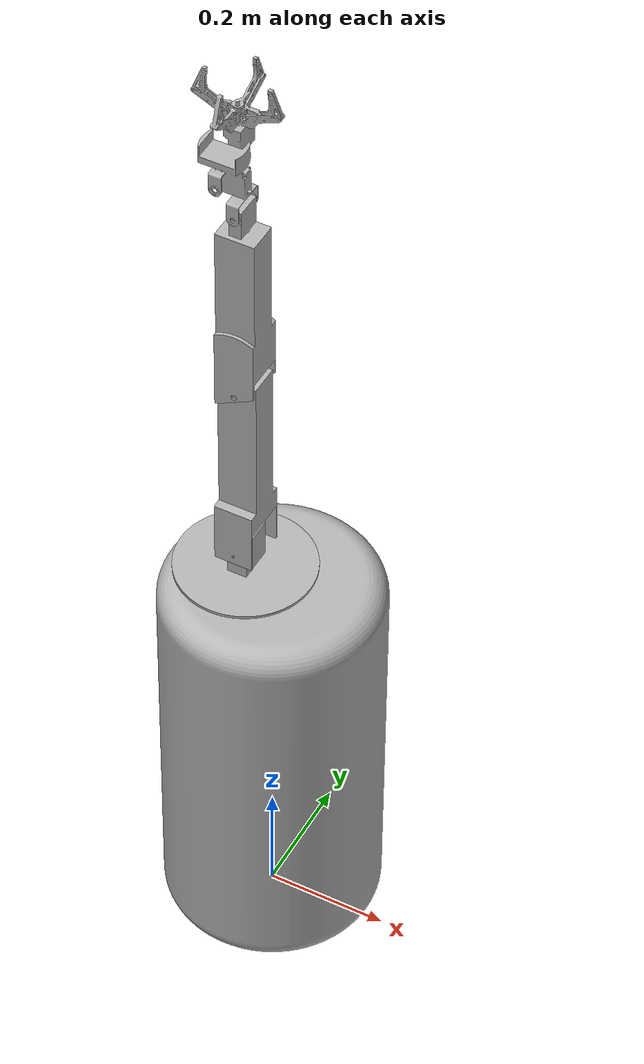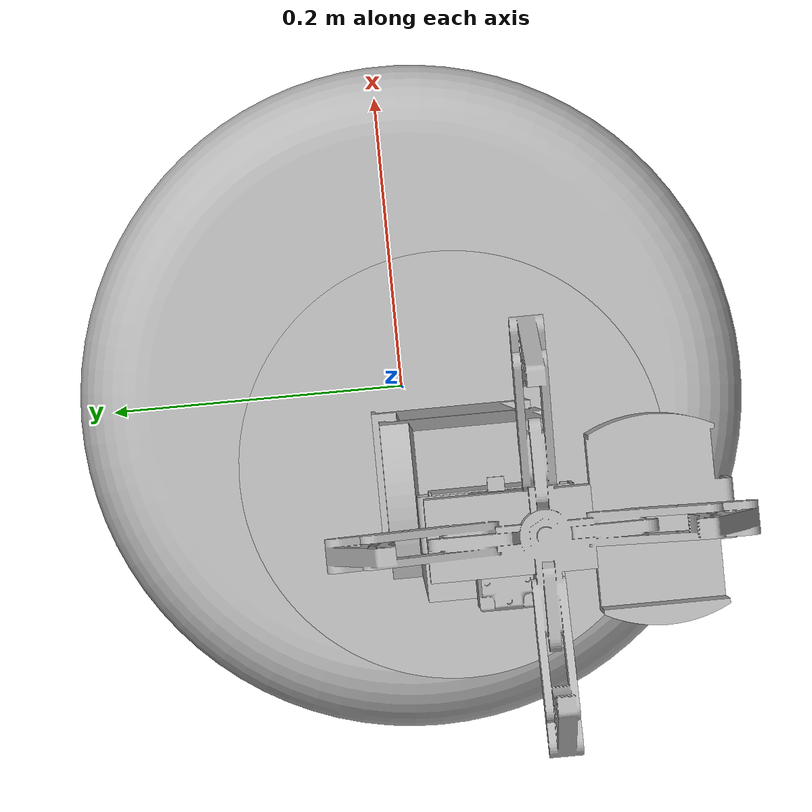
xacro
<?xml version="1.0" ?>
<robot name="roboticarm" xmlns:xacro="http://www.ros.org/wiki/xacro">

<xacro:include filename="$(find roboticarm_description)/urdf/materials.xacro" />
<xacro:include filename="$(find roboticarm_description)/urdf/roboticarm.trans" />
<xacro:include filename="$(find roboticarm_description)/urdf/roboticarm.gazebo" />
<link name="base_link">
  <inertial>
    <origin xyz="0.07170147470861574 0.0724672454182439 0.3244590303819093" rpy="0 0 0"/>
    <mass value="555.7346839951744"/>
    <inertia ixx="27.918915" iyy="27.919482" izz="8.711404" ixy="-0.000347" iyz="0.003477" ixz="0.00733"/>
  </inertial>
  <visual>
    <origin xyz="0 0 0" rpy="0 0 0"/>
    <geometry>
      <mesh filename="file://$(find roboticarm_description)/meshes/base_link.stl" scale="0.001 0.001 0.001"/>
    </geometry>
    <material name="silver"/>
  </visual>
  <collision>
    <origin xyz="0 0 0" rpy="0 0 0"/>
    <geometry>
      <mesh filename="file://$(find roboticarm_description)/meshes/base_link.stl" scale="0.001 0.001 0.001"/>
    </geometry>
  </collision>
</link>

<link name="waist_1">
  <inertial>
    <origin xyz="-4.5394164495393685e-07 0.000910466670597028 0.0159037153558238" rpy="0 0 0"/>
    <mass value="2.5376552135525894"/>
    <inertia ixx="0.006217" iyy="0.006015" izz="0.010077" ixy="0.0" iyz="-5e-05" ixz="0.0"/>
  </inertial>
  <visual>
    <origin xyz="-0.034565 -0.054849 -0.708914" rpy="0 0 0"/>
    <geometry>
      <mesh filename="file://$(find roboticarm_description)/meshes/waist_1.stl" scale="0.001 0.001 0.001"/>
    </geometry>
    <material name="silver"/>
  </visual>
  <collision>
    <origin xyz="-0.034565 -0.054849 -0.708914" rpy="0 0 0"/>
    <geometry>
      <mesh filename="file://$(find roboticarm_description)/meshes/waist_1.stl" scale="0.001 0.001 0.001"/>
    </geometry>
  </collision>
</link>

<link name="shoulder_1">
  <inertial>
    <origin xyz="-4.5394164471801446e-07 -0.035845507747538544 0.19064392313557188" rpy="0 0 0"/>
    <mass value="8.062761032384062"/>
    <inertia ixx="0.067114" iyy="0.067471" izz="0.005059" ixy="0.0" iyz="-0.0003" ixz="-0.0"/>
  </inertial>
  <visual>
    <origin xyz="-0.034565 -0.092619 -0.760831" rpy="0 0 0"/>
    <geometry>
      <mesh filename="file://$(find roboticarm_description)/meshes/shoulder_1.stl" scale="0.001 0.001 0.001"/>
    </geometry>
    <material name="silver"/>
  </visual>
  <collision>
    <origin xyz="-0.034565 -0.092619 -0.760831" rpy="0 0 0"/>
    <geometry>
      <mesh filename="file://$(find roboticarm_description)/meshes/shoulder_1.stl" scale="0.001 0.001 0.001"/>
    </geometry>
  </collision>
</link>

<link name="elbow_1">
  <inertial>
    <origin xyz="-7.27691491417895e-05 -0.03320582485557203 0.1555982788395438" rpy="0 0 0"/>
    <mass value="7.521482396242973"/>
    <inertia ixx="0.04938" iyy="0.04967" izz="0.004753" ixy="1e-06" iyz="0.000784" ixz="-8.9e-05"/>
  </inertial>
  <visual>
    <origin xyz="-0.034565 -0.088479 -1.087958" rpy="0 0 0"/>
    <geometry>
      <mesh filename="file://$(find roboticarm_description)/meshes/elbow_1.stl" scale="0.001 0.001 0.001"/>
    </geometry>
    <material name="silver"/>
  </visual>
  <collision>
    <origin xyz="-0.034565 -0.088479 -1.087958" rpy="0 0 0"/>
    <geometry>
      <mesh filename="file://$(find roboticarm_description)/meshes/elbow_1.stl" scale="0.001 0.001 0.001"/>
    </geometry>
  </collision>
</link>

<link name="w_a_1">
  <inertial>
    <origin xyz="-4.539416358084747e-07 -0.0001347854618797828 0.023017894662987537" rpy="0 0 0"/>
    <mass value="0.32955278928588533"/>
    <inertia ixx="0.000115" iyy="7.4e-05" izz="6.3e-05" ixy="0.0" iyz="1e-06" ixz="0.0"/>
  </inertial>
  <visual>
    <origin xyz="-0.034057 -0.054011 -1.390853" rpy="0 0 0"/>
    <geometry>
      <mesh filename="file://$(find roboticarm_description)/meshes/w_a_1.stl" scale="0.001 0.001 0.001"/>
    </geometry>
    <material name="silver"/>
  </visual>
  <collision>
    <origin xyz="-0.034057 -0.054011 -1.390853" rpy="0 0 0"/>
    <geometry>
      <mesh filename="file://$(find roboticarm_description)/meshes/w_a_1.stl" scale="0.001 0.001 0.001"/>
    </geometry>
  </collision>
</link>

<link name="w_b_1">
  <inertial>
    <origin xyz="-4.5394163915302155e-07 -0.023736476061548904 0.011335494498837306" rpy="0 0 0"/>
    <mass value="0.03411828668710707"/>
    <inertia ixx="2.4e-05" iyy="6e-06" izz="2e-05" ixy="0.0" iyz="0.0" ixz="-0.0"/>
  </inertial>
  <visual>
    <origin xyz="-0.034057 -0.076617 -1.427861" rpy="0 0 0"/>
    <geometry>
      <mesh filename="file://$(find roboticarm_description)/meshes/w_b_1.stl" scale="0.001 0.001 0.001"/>
    </geometry>
    <material name="silver"/>
  </visual>
  <collision>
    <origin xyz="-0.034057 -0.076617 -1.427861" rpy="0 0 0"/>
    <geometry>
      <mesh filename="file://$(find roboticarm_description)/meshes/w_b_1.stl" scale="0.001 0.001 0.001"/>
    </geometry>
  </collision>
</link>

<link name="w_c_1">
  <inertial>
    <origin xyz="-0.003951945014557701 -0.027299377766914802 0.06838515761215969" rpy="0 0 0"/>
    <mass value="0.6216016037280759"/>
    <inertia ixx="0.001485" iyy="0.001254" izz="0.000602" ixy="6.7e-05" iyz="0.000585" ixz="-0.000116"/>
  </inertial>
  <visual>
    <origin xyz="-0.034057 -0.052881 -1.454861" rpy="0 0 0"/>
    <geometry>
      <mesh filename="file://$(find roboticarm_description)/meshes/w_c_1.stl" scale="0.001 0.001 0.001"/>
    </geometry>
    <material name="silver"/>
  </visual>
  <collision>
    <origin xyz="-0.034057 -0.052881 -1.454861" rpy="0 0 0"/>
    <geometry>
      <mesh filename="file://$(find roboticarm_description)/meshes/w_c_1.stl" scale="0.001 0.001 0.001"/>
    </geometry>
  </collision>
</link>

<link name="gripper_1">
  <inertial>
    <origin xyz="-1.4549959634693743e-06 -0.004374027679356865 0.05098711189891225" rpy="0 0 0"/>
    <mass value="0.7040814534189734"/>
    <inertia ixx="0.00099" iyy="0.000924" izz="0.000643" ixy="-0.0" iyz="9.8e-05" ixz="-0.0"/>
  </inertial>
  <visual>
    <origin xyz="-0.034057 -0.052881 -1.542061" rpy="0 0 0"/>
    <geometry>
      <mesh filename="file://$(find roboticarm_description)/meshes/gripper_1.stl" scale="0.001 0.001 0.001"/>
    </geometry>
    <material name="silver"/>
  </visual>
  <collision>
    <origin xyz="-0.034057 -0.052881 -1.542061" rpy="0 0 0"/>
    <geometry>
      <mesh filename="file://$(find roboticarm_description)/meshes/gripper_1.stl" scale="0.001 0.001 0.001"/>
    </geometry>
  </collision>
</link>

<joint name="Revolute 11" type="continuous">
  <origin xyz="0.034565 0.054849 0.708914" rpy="0 0 0"/>
  <parent link="base_link"/>
  <child link="waist_1"/>
  <axis xyz="0.0 -0.0 -1.0"/>
</joint>

<joint name="Revolute 12" type="continuous">
  <origin xyz="0.0 0.03777 0.051917" rpy="0 0 0"/>
  <parent link="waist_1"/>
  <child link="shoulder_1"/>
  <axis xyz="0.0 1.0 0.0"/>
</joint>

<joint name="Revolute 13" type="continuous">
  <origin xyz="0.0 -0.00414 0.327127" rpy="0 0 0"/>
  <parent link="shoulder_1"/>
  <child link="elbow_1"/>
  <axis xyz="0.0 1.0 -0.0"/>
</joint>

<joint name="Revolute 18" type="continuous">
  <origin xyz="-0.000508 -0.034468 0.302895" rpy="0 0 0"/>
  <parent link="elbow_1"/>
  <child link="w_a_1"/>
  <axis xyz="-0.0 0.0 1.0"/>
</joint>

<joint name="Revolute 19" type="continuous">
  <origin xyz="0.0 0.022606 0.037008" rpy="0 0 0"/>
  <parent link="w_a_1"/>
  <child link="w_b_1"/>
  <axis xyz="0.0 1.0 -0.0"/>
</joint>

<joint name="Revolute 20" type="continuous">
  <origin xyz="0.0 -0.023736 0.027" rpy="0 0 0"/>
  <parent link="w_b_1"/>
  <child link="w_c_1"/>
  <axis xyz="0.0 -0.0 -1.0"/>
</joint>

<joint name="Rigid 21" type="fixed">
  <origin xyz="0.0 0.0 0.0872" rpy="0 0 0"/>
  <parent link="w_c_1"/>
  <child link="gripper_1"/>
</joint>

</robot>

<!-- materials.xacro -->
<robot name="roboticarm" xmlns:xacro="http://www.ros.org/wiki/xacro" >

<material name="silver">
  <color rgba="0.700 0.700 0.700 1.000"/>
</material>

</robot>

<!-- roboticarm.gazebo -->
<robot name="roboticarm" xmlns:xacro="http://www.ros.org/wiki/xacro" >

<xacro:property name="body_color" value="Gazebo/Silver" />

<gazebo>
  <plugin name="control" filename="libgazebo_ros_control.so"/>
</gazebo>
<gazebo reference="base_link">
  <material>${body_color}</material>
  <mu1>0.2</mu1>
  <mu2>0.2</mu2>
  <self_collide>true</self_collide>
  <gravity>true</gravity>
</gazebo>

<gazebo reference="waist_1">
  <material>${body_color}</material>
  <mu1>0.2</mu1>
  <mu2>0.2</mu2>
  <self_collide>true</self_collide>
</gazebo>

<gazebo reference="shoulder_1">
  <material>${body_color}</material>
  <mu1>0.2</mu1>
  <mu2>0.2</mu2>
  <self_collide>true</self_collide>
</gazebo>

<gazebo reference="elbow_1">
  <material>${body_color}</material>
  <mu1>0.2</mu1>
  <mu2>0.2</mu2>
  <self_collide>true</self_collide>
</gazebo>

<gazebo reference="w_a_1">
  <material>${body_color}</material>
  <mu1>0.2</mu1>
  <mu2>0.2</mu2>
  <self_collide>true</self_collide>
</gazebo>

<gazebo reference="w_b_1">
  <material>${body_color}</material>
  <mu1>0.2</mu1>
  <mu2>0.2</mu2>
  <self_collide>true</self_collide>
</gazebo>

<gazebo reference="w_c_1">
  <material>${body_color}</material>
  <mu1>0.2</mu1>
  <mu2>0.2</mu2>
  <self_collide>true</self_collide>
</gazebo>

<gazebo reference="gripper_1">
  <material>${body_color}</material>
  <mu1>0.2</mu1>
  <mu2>0.2</mu2>
  <self_collide>true</self_collide>
</gazebo>

</robot>
